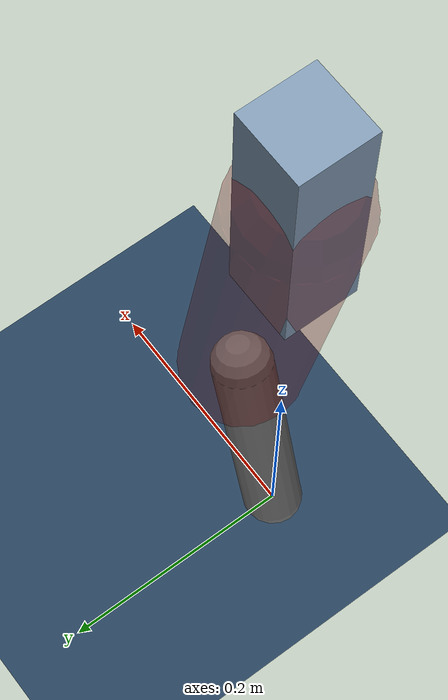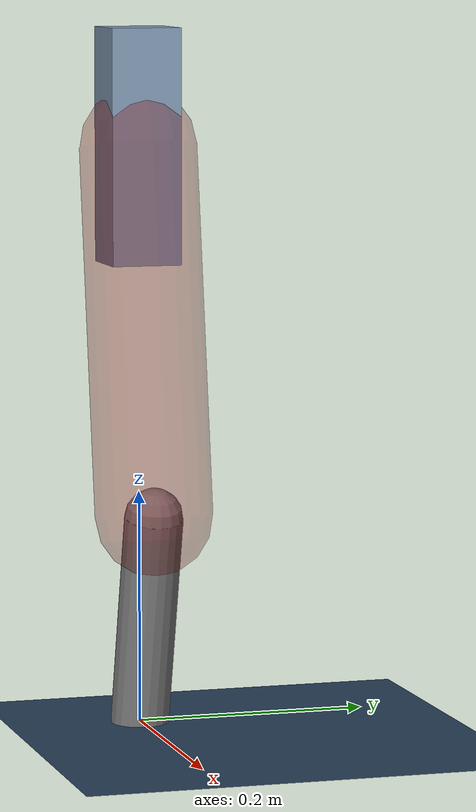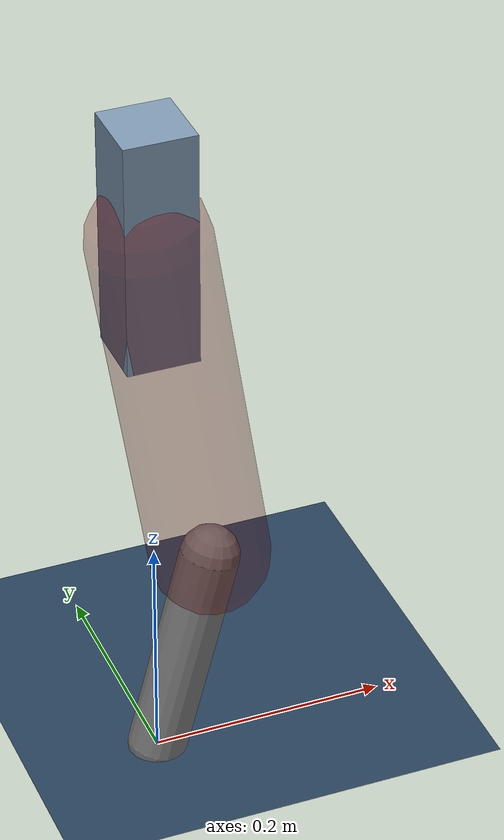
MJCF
<mujoco model="Hopper2D">
	<compiler inertiafromgeom="true" angle="radian" />
	<option timestep="0.001" integrator="implicit" cone="elliptic" solver="Newton" tolerance="1e-10" />

	<default>
		<geom contype="1" conaffinity="1" condim="3" friction="2 0.005 0.0001" solref="0.005 1" />
		<joint limited="true" damping="0.1" />
	</default>

	<asset>
		<texture name="skybox" type="skybox" builtin="gradient" rgb1=".4 .6 .8" rgb2="0 0 0" width="800" height="800" />
		<texture name="grid" type="2d" builtin="checker" rgb1=".1 .2 .3" rgb2=".2 .3 .4" width="300" height="300" mark="edge" markrgb=".2 .3 .4" />
		<material name="ground" texture="grid" texrepeat="1 1" texuniform="true" reflectance="0.1" />
		<material name="leg" rgba="0.5 0.6 0.7 1" />
	</asset>

	<worldbody>

		<geom name="floor" type="plane" size="5 5 0.25" material="ground" />

		<light directional="false" diffuse="0.8 0.8 0.8" specular="0.3 0.3 0.3" pos="0 0 2" dir="0 0 -1" />
		<light mode="targetbodycom" target="base" directional="false" diffuse="0.8 0.8 0.8" specular="0.3 0.3 0.3" pos="0 0 2" dir="0 0 -1" />

		<camera name="fixed" pos="0 -2 1" xyaxes="1 0 0 0 0 1" />
		<camera name="tracking" mode="trackcom" pos="0 -3 1" />

		<body name="root" pos="0 0 0.49642337730411057">
			<joint name="slide_x" type="slide" axis="1 0 0" range="-100 100" />
			<joint name="slide_z" type="slide" axis="0 0 1" range="0 10" />

			<body name="base" pos="0 0 0">
				<geom name="torso" type="box" size="0.03 0.03 0.1" mass="2.287" material="leg" />

				<body name="link1" pos="0 0 0" euler="0 1.4164529760927689 0">
					<joint type="hinge" axis="0 -1 0" pos="0 0 0" name="hinge1" limited="true" range="-3.14 3.14" stiffness="0" damping="0.1" />
					<geom name="thigh" type="capsule" fromto="0 0 0 0.31533804693546774 0 0" size="0.05" rgba="0.5 0 0 0.3" mass="1.0304465314193096" />

					<body name="link2" pos="0.31533804693546774 0 0" euler="0 0.41084130624076226 0">
						<joint type="hinge" axis="0 -1 0" pos="0 0 0" name="hinge2" limited="true" range="-3.14 3.14" stiffness="0" damping="0.1" />
						<geom name="shank" type="capsule" fromto="0 0 0 0.19108533036864286 0 0" size="0.025" mass="0.3933682642949143" />

					</body>
				</body>
			</body>
		</body>
	</worldbody>

	<actuator>
		<motor name="torque1" joint="hinge1" ctrlrange="-64.2621715047167 64.2621715047167" ctrllimited="true" gear="1" />
		<motor name="torque2" joint="hinge2" ctrlrange="-96.27523750893764 96.27523750893764" ctrllimited="true" gear="1" />
	</actuator>
</mujoco>
